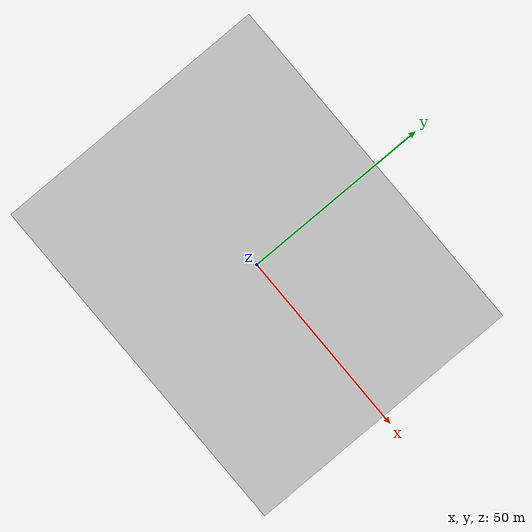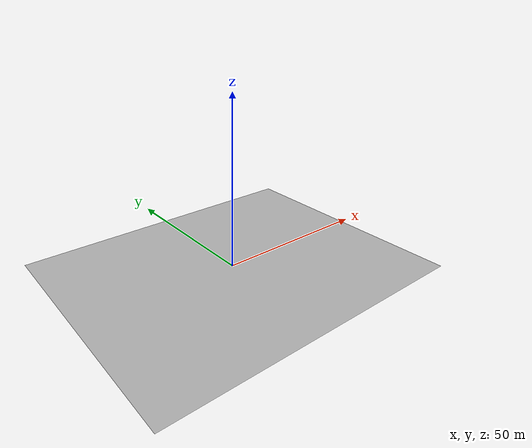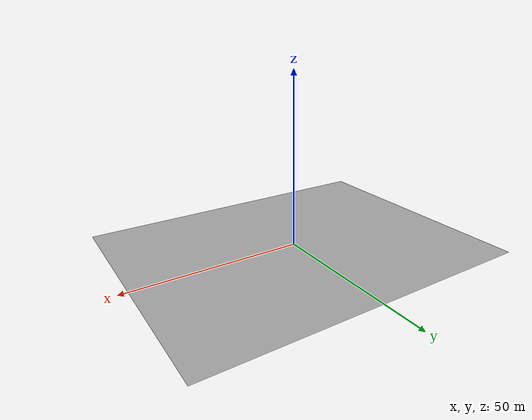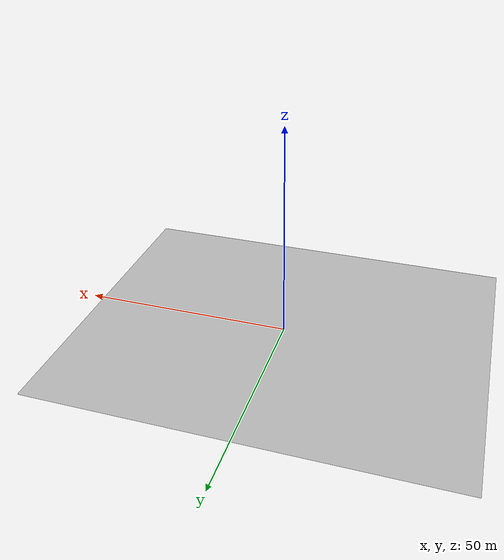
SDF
<?xml version="1.0" ?>
<sdf version="1.7">
    <world name="empty_world">
        <physics type="ode">
            <max_step_size>0.01</max_step_size>
        </physics>
        <light type="directional" name="sun">
            <cast_shadows>true</cast_shadows>
            <pose>0 0 10 0 0 0</pose>
            <diffuse>0.8 0.8 0.8 1</diffuse>
            <specular>0.2 0.2 0.2 1</specular>
            <attenuation>
                <range>1000</range>
                <constant>0.9</constant>
                <linear>0.01</linear>
                <quadratic>0.001</quadratic>
            </attenuation>
            <direction>-0.5 0.1 -0.9</direction>
        </light>

        <include>
            <uri>model://robotaksi_yol_modeli</uri>
        </include>
    </world>
</sdf>

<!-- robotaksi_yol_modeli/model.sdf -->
<sdf version="1.7">
  <model name="robotaksi_yol_modeli">
    <static>true</static>
    <link name="link">
      <visual name="visual">
        <geometry>
          <mesh>
            <uri>model://robotaksi_yol_modeli/meshes/robotaksi_yol.dae</uri>
            <scale>0.5 0.5 0.5</scale>
          </mesh>
        </geometry>
      </visual>
      <collision name="collision">
        <geometry>
          <mesh>
            <uri>model://robotaksi_yol_modeli/meshes/robotaksi_yol.dae</uri>
            <scale>0.5 0.5 0.5</scale>
          </mesh>
        </geometry>
      </collision>
    </link>
  </model>
</sdf>
